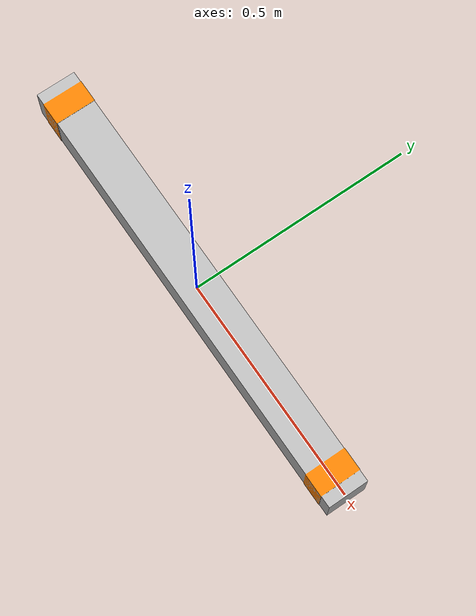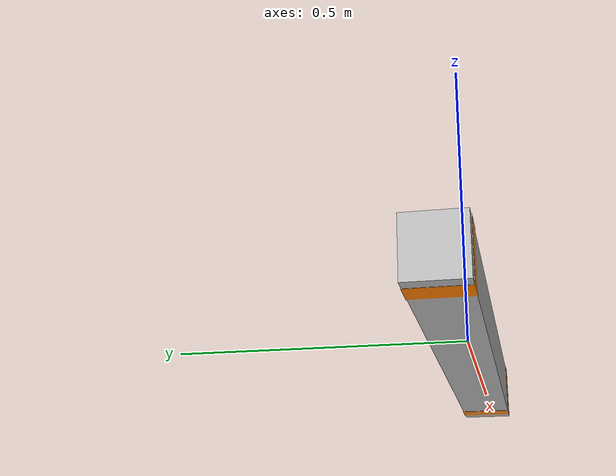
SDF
<?xml version="1.0" ?>
<sdf version="1.4">
  <model name="lumber_4x4x40">
    <link name="link">
      <inertial>
        <mass>2.74</mass>
        <inertia>
          <ixx>0.0036</ixx>
          <ixy>0.00</ixy>
          <ixz>0.00</ixz>
          <iyy>0.2366</iyy>
          <iyz>0.00</iyz>
          <izz>0.2366</izz>
        </inertia>
      </inertial>
      <collision name="collision">
        <geometry>
          <box>
            <size>1.016 0.0888 0.0888</size>
          </box>
        </geometry>
        <surface>
          <bounce>
            <restitution_coefficient>0.01</restitution_coefficient>
            <threshold>5.0</threshold>
          </bounce>
          <friction>
            <ode>
              <mu>10</mu>
              <mu2>10</mu2>
            </ode>
          </friction>
          <contact>
            <ode>
              <soft_cfm>0.001</soft_cfm>
              <kp>100000.0</kp>
              <kd>1000.0</kd>
            </ode>
          </contact>
        </surface>
      </collision>

      <visual name="visual">
        <geometry>
          <mesh>
            <uri>model://drc_practice_4x4x40/meshes/4x4x40.dae</uri>
          </mesh>
        </geometry>
      </visual>
    </link>
  </model>

</sdf>
